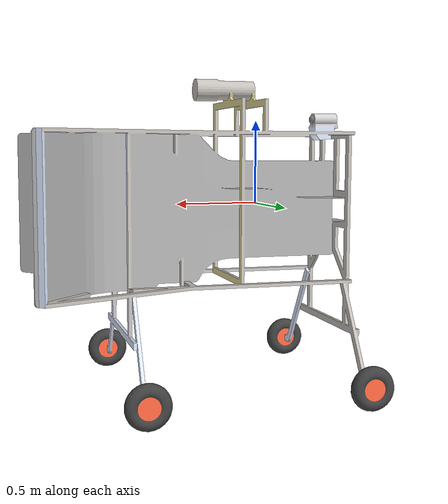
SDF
<?xml version="1.0" ?>
<sdf version="1.5">
  <model name="medusa_dock">
    <link name="medusa_dock_link">
      <static>false</static>
      <collision name="medusa_dock">
        <pose>0 0 0 0 0 0</pose>
        <geometry>
          <mesh>
            <uri>model://medusa_dock/meshes/medusa_dock.dae</uri>
            <scale>1.0 1.0 1.0</scale>
          </mesh>
        </geometry>
      </collision>

      <visual name="medusa_dock">
        <pose>0 0 0 0 0 0</pose>
        <cast_shadows>false</cast_shadows>
        <geometry>
          <mesh>
            <uri>model://medusa_dock/meshes/medusa_dock.dae</uri>
            <scale>1.0 1.0 1.0</scale>
          </mesh>
        </geometry>
      </visual>
      <kinematic>1</kinematic>
     </link>
  </model>
</sdf>
